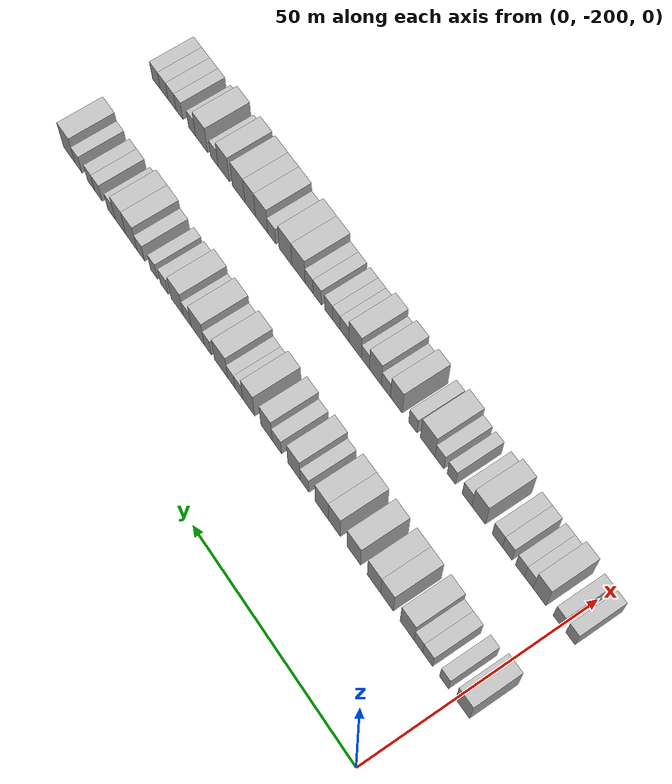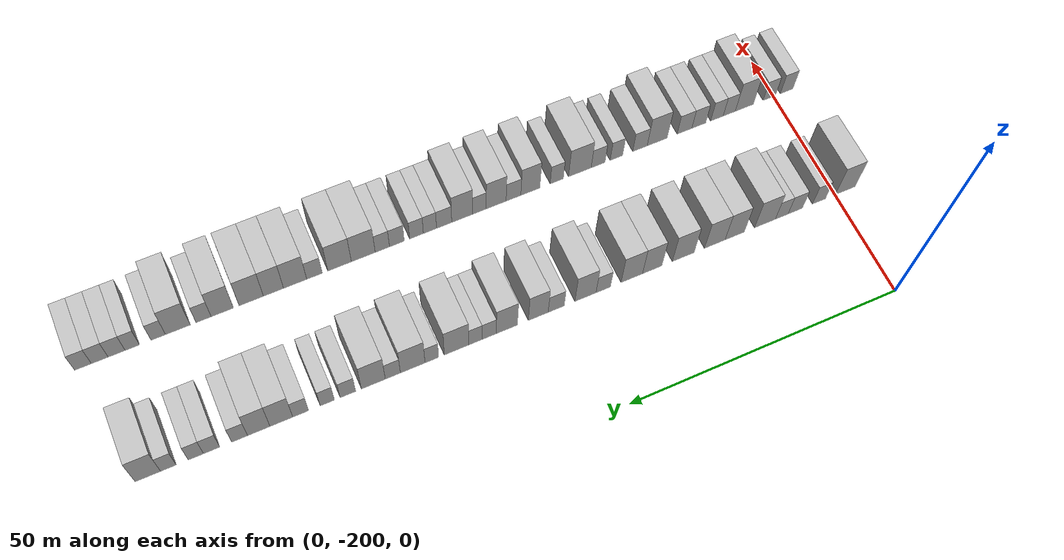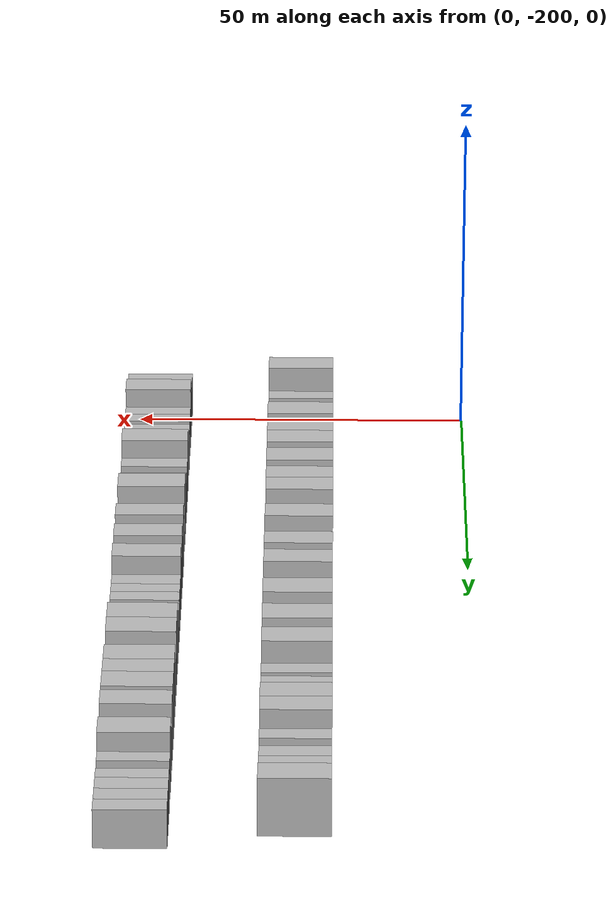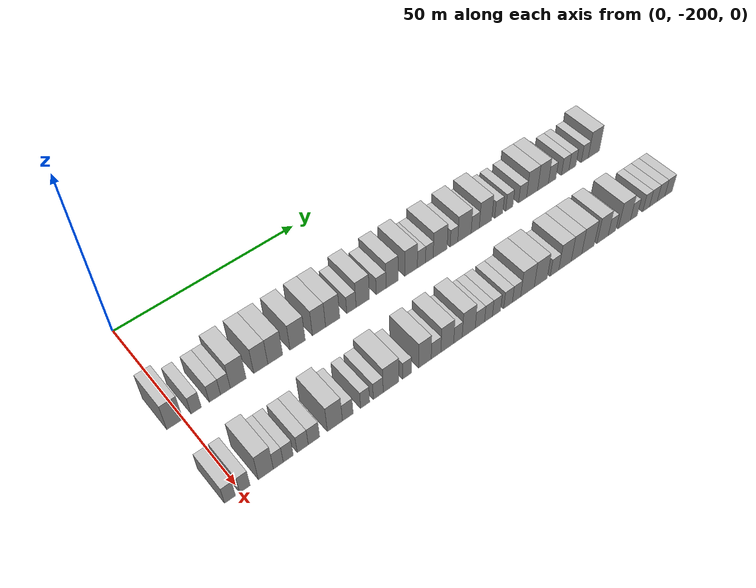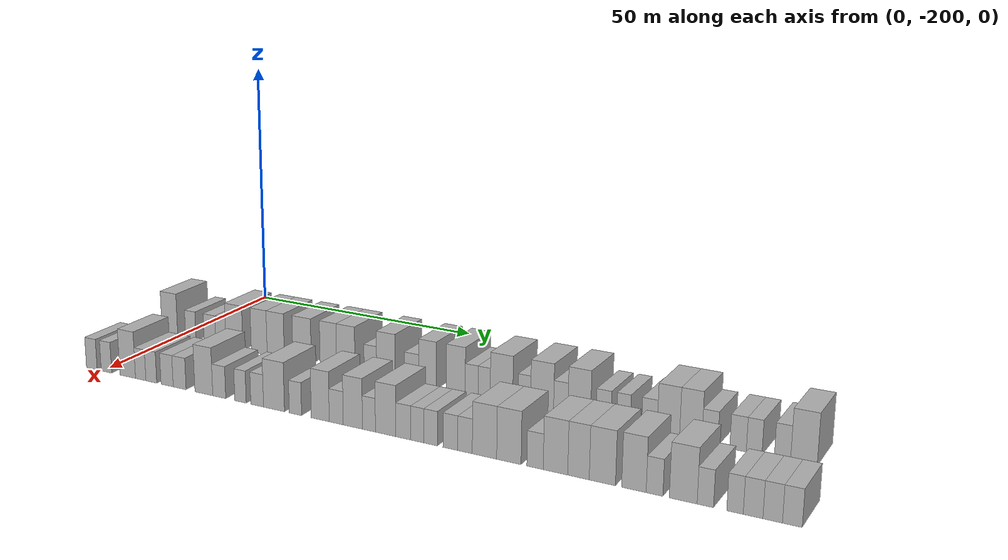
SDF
<sdf version="1.6">
 <world name="default">
  <model name="building_1">
   <static>1</static>
   <pose>25.0000 -202.0195 0 0.000000 0.000000 0.000000</pose>
   <link name="link">
    <pose>0 0 4.50 0 0 0</pose>
    <collision name="collision"><geometry><box><size>10.0000 3.9611 9.0000</size></box></geometry></collision>
    <visual name="visual">
     <cast_shadows>0</cast_shadows>
     <geometry><box><size>10.0000 3.9611 9.0000</size></box></geometry>
     <material>
      <script>
       <uri>model://HANNAS_wall/materials/scripts</uri>
       <uri>model://HANNAS_wall/materials/textures</uri>
       <name>vrc/HANNAS_wall</name>
      </script>
     </material>
    </visual>
   </link>
  </model>
  <model name="building_2">
   <static>1</static>
   <pose>25.0000 -196.7426 0 0.000000 0.000000 0.000000</pose>
   <link name="link">
    <pose>0 0 3.00 0 0 0</pose>
    <collision name="collision"><geometry><box><size>10.0000 2.5925 6.0000</size></box></geometry></collision>
    <visual name="visual">
     <cast_shadows>0</cast_shadows>
     <geometry><box><size>10.0000 2.5925 6.0000</size></box></geometry>
     <material>
      <script>
       <uri>model://HANNAS_wall/materials/scripts</uri>
       <uri>model://HANNAS_wall/materials/textures</uri>
       <name>vrc/HANNAS_wall</name>
      </script>
     </material>
    </visual>
   </link>
  </model>
  <model name="building_3">
   <static>1</static>
   <pose>25.0000 -192.0172 0 0.000000 0.000000 0.000000</pose>
   <link name="link">
    <pose>0 0 3.00 0 0 0</pose>
    <collision name="collision"><geometry><box><size>10.0000 2.8583 6.0000</size></box></geometry></collision>
    <visual name="visual">
     <cast_shadows>0</cast_shadows>
     <geometry><box><size>10.0000 2.8583 6.0000</size></box></geometry>
     <material>
      <script>
       <uri>model://HANNAS_wall/materials/scripts</uri>
       <uri>model://HANNAS_wall/materials/textures</uri>
       <name>vrc/HANNAS_wall</name>
      </script>
     </material>
    </visual>
   </link>
  </model>
  <model name="building_4">
   <static>1</static>
   <pose>25.0000 -189.3305 0 0.000000 0.000000 0.000000</pose>
   <link name="link">
    <pose>0 0 3.00 0 0 0</pose>
    <collision name="collision"><geometry><box><size>10.0000 2.5152 6.0000</size></box></geometry></collision>
    <visual name="visual">
     <cast_shadows>0</cast_shadows>
     <geometry><box><size>10.0000 2.5152 6.0000</size></box></geometry>
     <material>
      <script>
       <uri>model://HANNAS_wall/materials/scripts</uri>
       <uri>model://HANNAS_wall/materials/textures</uri>
       <name>vrc/HANNAS_wall</name>
      </script>
     </material>
    </visual>
   </link>
  </model>
  <model name="building_5">
   <static>1</static>
   <pose>25.0000 -186.0190 0 0.000000 0.000000 0.000000</pose>
   <link name="link">
    <pose>0 0 4.50 0 0 0</pose>
    <collision name="collision"><geometry><box><size>10.0000 4.1077 9.0000</size></box></geometry></collision>
    <visual name="visual">
     <cast_shadows>0</cast_shadows>
     <geometry><box><size>10.0000 4.1077 9.0000</size></box></geometry>
     <material>
      <script>
       <uri>model://HANNAS_wall/materials/scripts</uri>
       <uri>model://HANNAS_wall/materials/textures</uri>
       <name>vrc/HANNAS_wall</name>
      </script>
     </material>
    </visual>
   </link>
  </model>
  <model name="building_6">
   <static>1</static>
   <pose>25.0000 -180.0882 0 0.000000 0.000000 0.000000</pose>
   <link name="link">
    <pose>0 0 4.50 0 0 0</pose>
    <collision name="collision"><geometry><box><size>10.0000 3.7539 9.0000</size></box></geometry></collision>
    <visual name="visual">
     <cast_shadows>0</cast_shadows>
     <geometry><box><size>10.0000 3.7539 9.0000</size></box></geometry>
     <material>
      <script>
       <uri>model://HANNAS_wall/materials/scripts</uri>
       <uri>model://HANNAS_wall/materials/textures</uri>
       <name>vrc/HANNAS_wall</name>
      </script>
     </material>
    </visual>
   </link>
  </model>
  <model name="building_7">
   <static>1</static>
   <pose>25.0000 -176.2114 0 0.000000 0.000000 0.000000</pose>
   <link name="link">
    <pose>0 0 4.50 0 0 0</pose>
    <collision name="collision"><geometry><box><size>10.0000 3.9996 9.0000</size></box></geometry></collision>
    <visual name="visual">
     <cast_shadows>0</cast_shadows>
     <geometry><box><size>10.0000 3.9996 9.0000</size></box></geometry>
     <material>
      <script>
       <uri>model://HANNAS_wall/materials/scripts</uri>
       <uri>model://HANNAS_wall/materials/textures</uri>
       <name>vrc/HANNAS_wall</name>
      </script>
     </material>
    </visual>
   </link>
  </model>
  <model name="building_8">
   <static>1</static>
   <pose>25.0000 -170.1187 0 0.000000 0.000000 0.000000</pose>
   <link name="link">
    <pose>0 0 4.50 0 0 0</pose>
    <collision name="collision"><geometry><box><size>10.0000 4.1858 9.0000</size></box></geometry></collision>
    <visual name="visual">
     <cast_shadows>0</cast_shadows>
     <geometry><box><size>10.0000 4.1858 9.0000</size></box></geometry>
     <material>
      <script>
       <uri>model://HANNAS_wall/materials/scripts</uri>
       <uri>model://HANNAS_wall/materials/textures</uri>
       <name>vrc/HANNAS_wall</name>
      </script>
     </material>
    </visual>
   </link>
  </model>
  <model name="building_9">
   <static>1</static>
   <pose>25.0000 -164.1834 0 0.000000 0.000000 0.000000</pose>
   <link name="link">
    <pose>0 0 4.50 0 0 0</pose>
    <collision name="collision"><geometry><box><size>10.0000 3.6849 9.0000</size></box></geometry></collision>
    <visual name="visual">
     <cast_shadows>0</cast_shadows>
     <geometry><box><size>10.0000 3.6849 9.0000</size></box></geometry>
     <material>
      <script>
       <uri>model://HANNAS_wall/materials/scripts</uri>
       <uri>model://HANNAS_wall/materials/textures</uri>
       <name>vrc/HANNAS_wall</name>
      </script>
     </material>
    </visual>
   </link>
  </model>
  <model name="building_10">
   <static>1</static>
   <pose>25.0000 -160.3141 0 0.000000 0.000000 0.000000</pose>
   <link name="link">
    <pose>0 0 4.50 0 0 0</pose>
    <collision name="collision"><geometry><box><size>10.0000 4.0536 9.0000</size></box></geometry></collision>
    <visual name="visual">
     <cast_shadows>0</cast_shadows>
     <geometry><box><size>10.0000 4.0536 9.0000</size></box></geometry>
     <material>
      <script>
       <uri>model://HANNAS_wall/materials/scripts</uri>
       <uri>model://HANNAS_wall/materials/textures</uri>
       <name>vrc/HANNAS_wall</name>
      </script>
     </material>
    </visual>
   </link>
  </model>
  <model name="building_11">
   <static>1</static>
   <pose>25.0000 -154.9303 0 0.000000 0.000000 0.000000</pose>
   <link name="link">
    <pose>0 0 3.00 0 0 0</pose>
    <collision name="collision"><geometry><box><size>10.0000 2.7140 6.0000</size></box></geometry></collision>
    <visual name="visual">
     <cast_shadows>0</cast_shadows>
     <geometry><box><size>10.0000 2.7140 6.0000</size></box></geometry>
     <material>
      <script>
       <uri>model://HANNAS_wall/materials/scripts</uri>
       <uri>model://HANNAS_wall/materials/textures</uri>
       <name>vrc/HANNAS_wall</name>
      </script>
     </material>
    </visual>
   </link>
  </model>
  <model name="building_12">
   <static>1</static>
   <pose>25.0000 -151.6047 0 0.000000 0.000000 0.000000</pose>
   <link name="link">
    <pose>0 0 4.50 0 0 0</pose>
    <collision name="collision"><geometry><box><size>10.0000 3.9372 9.0000</size></box></geometry></collision>
    <visual name="visual">
     <cast_shadows>0</cast_shadows>
     <geometry><box><size>10.0000 3.9372 9.0000</size></box></geometry>
     <material>
      <script>
       <uri>model://HANNAS_wall/materials/scripts</uri>
       <uri>model://HANNAS_wall/materials/textures</uri>
       <name>vrc/HANNAS_wall</name>
      </script>
     </material>
    </visual>
   </link>
  </model>
  <model name="building_13">
   <static>1</static>
   <pose>25.0000 -146.1533 0 0.000000 0.000000 0.000000</pose>
   <link name="link">
    <pose>0 0 3.00 0 0 0</pose>
    <collision name="collision"><geometry><box><size>10.0000 2.9655 6.0000</size></box></geometry></collision>
    <visual name="visual">
     <cast_shadows>0</cast_shadows>
     <geometry><box><size>10.0000 2.9655 6.0000</size></box></geometry>
     <material>
      <script>
       <uri>model://HANNAS_wall/materials/scripts</uri>
       <uri>model://HANNAS_wall/materials/textures</uri>
       <name>vrc/HANNAS_wall</name>
      </script>
     </material>
    </visual>
   </link>
  </model>
  <model name="building_14">
   <static>1</static>
   <pose>25.0000 -142.8404 0 0.000000 0.000000 0.000000</pose>
   <link name="link">
    <pose>0 0 4.50 0 0 0</pose>
    <collision name="collision"><geometry><box><size>10.0000 3.6602 9.0000</size></box></geometry></collision>
    <visual name="visual">
     <cast_shadows>0</cast_shadows>
     <geometry><box><size>10.0000 3.6602 9.0000</size></box></geometry>
     <material>
      <script>
       <uri>model://HANNAS_wall/materials/scripts</uri>
       <uri>model://HANNAS_wall/materials/textures</uri>
       <name>vrc/HANNAS_wall</name>
      </script>
     </material>
    </visual>
   </link>
  </model>
  <model name="building_15">
   <static>1</static>
   <pose>25.0000 -137.0735 0 0.000000 0.000000 0.000000</pose>
   <link name="link">
    <pose>0 0 4.50 0 0 0</pose>
    <collision name="collision"><geometry><box><size>10.0000 3.8736 9.0000</size></box></geometry></collision>
    <visual name="visual">
     <cast_shadows>0</cast_shadows>
     <geometry><box><size>10.0000 3.8736 9.0000</size></box></geometry>
     <material>
      <script>
       <uri>model://HANNAS_wall/materials/scripts</uri>
       <uri>model://HANNAS_wall/materials/textures</uri>
       <name>vrc/HANNAS_wall</name>
      </script>
     </material>
    </visual>
   </link>
  </model>
  <model name="building_16">
   <static>1</static>
   <pose>25.0000 -133.8605 0 0.000000 0.000000 0.000000</pose>
   <link name="link">
    <pose>0 0 3.00 0 0 0</pose>
    <collision name="collision"><geometry><box><size>10.0000 2.5524 6.0000</size></box></geometry></collision>
    <visual name="visual">
     <cast_shadows>0</cast_shadows>
     <geometry><box><size>10.0000 2.5524 6.0000</size></box></geometry>
     <material>
      <script>
       <uri>model://HANNAS_wall/materials/scripts</uri>
       <uri>model://HANNAS_wall/materials/textures</uri>
       <name>vrc/HANNAS_wall</name>
      </script>
     </material>
    </visual>
   </link>
  </model>
  <model name="building_17">
   <static>1</static>
   <pose>25.0000 -131.3739 0 0.000000 0.000000 0.000000</pose>
   <link name="link">
    <pose>0 0 3.00 0 0 0</pose>
    <collision name="collision"><geometry><box><size>10.0000 2.4209 6.0000</size></box></geometry></collision>
    <visual name="visual">
     <cast_shadows>0</cast_shadows>
     <geometry><box><size>10.0000 2.4209 6.0000</size></box></geometry>
     <material>
      <script>
       <uri>model://HANNAS_wall/materials/scripts</uri>
       <uri>model://HANNAS_wall/materials/textures</uri>
       <name>vrc/HANNAS_wall</name>
      </script>
     </material>
    </visual>
   </link>
  </model>
  <model name="building_18">
   <static>1</static>
   <pose>25.0000 -127.9563 0 0.000000 0.000000 0.000000</pose>
   <link name="link">
    <pose>0 0 4.50 0 0 0</pose>
    <collision name="collision"><geometry><box><size>10.0000 4.4143 9.0000</size></box></geometry></collision>
    <visual name="visual">
     <cast_shadows>0</cast_shadows>
     <geometry><box><size>10.0000 4.4143 9.0000</size></box></geometry>
     <material>
      <script>
       <uri>model://HANNAS_wall/materials/scripts</uri>
       <uri>model://HANNAS_wall/materials/textures</uri>
       <name>vrc/HANNAS_wall</name>
      </script>
     </material>
    </visual>
   </link>
  </model>
  <model name="building_19">
   <static>1</static>
   <pose>25.0000 -123.5291 0 0.000000 0.000000 0.000000</pose>
   <link name="link">
    <pose>0 0 3.00 0 0 0</pose>
    <collision name="collision"><geometry><box><size>10.0000 2.4401 6.0000</size></box></geometry></collision>
    <visual name="visual">
     <cast_shadows>0</cast_shadows>
     <geometry><box><size>10.0000 2.4401 6.0000</size></box></geometry>
     <material>
      <script>
       <uri>model://HANNAS_wall/materials/scripts</uri>
       <uri>model://HANNAS_wall/materials/textures</uri>
       <name>vrc/HANNAS_wall</name>
      </script>
     </material>
    </visual>
   </link>
  </model>
  <model name="building_20">
   <static>1</static>
   <pose>25.0000 -120.1236 0 0.000000 0.000000 0.000000</pose>
   <link name="link">
    <pose>0 0 4.50 0 0 0</pose>
    <collision name="collision"><geometry><box><size>10.0000 4.3709 9.0000</size></box></geometry></collision>
    <visual name="visual">
     <cast_shadows>0</cast_shadows>
     <geometry><box><size>10.0000 4.3709 9.0000</size></box></geometry>
     <material>
      <script>
       <uri>model://HANNAS_wall/materials/scripts</uri>
       <uri>model://HANNAS_wall/materials/textures</uri>
       <name>vrc/HANNAS_wall</name>
      </script>
     </material>
    </visual>
   </link>
  </model>
  <model name="building_21">
   <static>1</static>
   <pose>25.0000 -116.5990 0 0.000000 0.000000 0.000000</pose>
   <link name="link">
    <pose>0 0 3.00 0 0 0</pose>
    <collision name="collision"><geometry><box><size>10.0000 2.6783 6.0000</size></box></geometry></collision>
    <visual name="visual">
     <cast_shadows>0</cast_shadows>
     <geometry><box><size>10.0000 2.6783 6.0000</size></box></geometry>
     <material>
      <script>
       <uri>model://HANNAS_wall/materials/scripts</uri>
       <uri>model://HANNAS_wall/materials/textures</uri>
       <name>vrc/HANNAS_wall</name>
      </script>
     </material>
    </visual>
   </link>
  </model>
  <model name="building_22">
   <static>1</static>
   <pose>25.0000 -113.1571 0 0.000000 0.000000 0.000000</pose>
   <link name="link">
    <pose>0 0 4.50 0 0 0</pose>
    <collision name="collision"><geometry><box><size>10.0000 4.2056 9.0000</size></box></geometry></collision>
    <visual name="visual">
     <cast_shadows>0</cast_shadows>
     <geometry><box><size>10.0000 4.2056 9.0000</size></box></geometry>
     <material>
      <script>
       <uri>model://HANNAS_wall/materials/scripts</uri>
       <uri>model://HANNAS_wall/materials/textures</uri>
       <name>vrc/HANNAS_wall</name>
      </script>
     </material>
    </visual>
   </link>
  </model>
  <model name="building_23">
   <static>1</static>
   <pose>25.0000 -108.7004 0 0.000000 0.000000 0.000000</pose>
   <link name="link">
    <pose>0 0 3.00 0 0 0</pose>
    <collision name="collision"><geometry><box><size>10.0000 2.7079 6.0000</size></box></geometry></collision>
    <visual name="visual">
     <cast_shadows>0</cast_shadows>
     <geometry><box><size>10.0000 2.7079 6.0000</size></box></geometry>
     <material>
      <script>
       <uri>model://HANNAS_wall/materials/scripts</uri>
       <uri>model://HANNAS_wall/materials/textures</uri>
       <name>vrc/HANNAS_wall</name>
      </script>
     </material>
    </visual>
   </link>
  </model>
  <model name="building_24">
   <static>1</static>
   <pose>25.0000 -105.1096 0 0.000000 0.000000 0.000000</pose>
   <link name="link">
    <pose>0 0 3.00 0 0 0</pose>
    <collision name="collision"><geometry><box><size>10.0000 2.4737 6.0000</size></box></geometry></collision>
    <visual name="visual">
     <cast_shadows>0</cast_shadows>
     <geometry><box><size>10.0000 2.4737 6.0000</size></box></geometry>
     <material>
      <script>
       <uri>model://HANNAS_wall/materials/scripts</uri>
       <uri>model://HANNAS_wall/materials/textures</uri>
       <name>vrc/HANNAS_wall</name>
      </script>
     </material>
    </visual>
   </link>
  </model>
  <model name="building_25">
   <static>1</static>
   <pose>25.0000 -100.5047 0 0.000000 0.000000 0.000000</pose>
   <link name="link">
    <pose>0 0 3.00 0 0 0</pose>
    <collision name="collision"><geometry><box><size>10.0000 2.7361 6.0000</size></box></geometry></collision>
    <visual name="visual">
     <cast_shadows>0</cast_shadows>
     <geometry><box><size>10.0000 2.7361 6.0000</size></box></geometry>
     <material>
      <script>
       <uri>model://HANNAS_wall/materials/scripts</uri>
       <uri>model://HANNAS_wall/materials/textures</uri>
       <name>vrc/HANNAS_wall</name>
      </script>
     </material>
    </visual>
   </link>
  </model>
  <model name="building_26">
   <static>1</static>
   <pose>25.0000 -97.1842 0 0.000000 0.000000 0.000000</pose>
   <link name="link">
    <pose>0 0 4.50 0 0 0</pose>
    <collision name="collision"><geometry><box><size>10.0000 3.9048 9.0000</size></box></geometry></collision>
    <visual name="visual">
     <cast_shadows>0</cast_shadows>
     <geometry><box><size>10.0000 3.9048 9.0000</size></box></geometry>
     <material>
      <script>
       <uri>model://HANNAS_wall/materials/scripts</uri>
       <uri>model://HANNAS_wall/materials/textures</uri>
       <name>vrc/HANNAS_wall</name>
      </script>
     </material>
    </visual>
   </link>
  </model>
  <model name="building_27">
   <static>1</static>
   <pose>25.0000 -93.3163 0 0.000000 0.000000 0.000000</pose>
   <link name="link">
    <pose>0 0 4.50 0 0 0</pose>
    <collision name="collision"><geometry><box><size>10.0000 3.8311 9.0000</size></box></geometry></collision>
    <visual name="visual">
     <cast_shadows>0</cast_shadows>
     <geometry><box><size>10.0000 3.8311 9.0000</size></box></geometry>
     <material>
      <script>
       <uri>model://HANNAS_wall/materials/scripts</uri>
       <uri>model://HANNAS_wall/materials/textures</uri>
       <name>vrc/HANNAS_wall</name>
      </script>
     </material>
    </visual>
   </link>
  </model>
  <model name="building_28">
   <static>1</static>
   <pose>25.0000 -90.0524 0 0.000000 0.000000 0.000000</pose>
   <link name="link">
    <pose>0 0 3.00 0 0 0</pose>
    <collision name="collision"><geometry><box><size>10.0000 2.6967 6.0000</size></box></geometry></collision>
    <visual name="visual">
     <cast_shadows>0</cast_shadows>
     <geometry><box><size>10.0000 2.6967 6.0000</size></box></geometry>
     <material>
      <script>
       <uri>model://HANNAS_wall/materials/scripts</uri>
       <uri>model://HANNAS_wall/materials/textures</uri>
       <name>vrc/HANNAS_wall</name>
      </script>
     </material>
    </visual>
   </link>
  </model>
  <model name="building_29">
   <static>1</static>
   <pose>25.0000 -85.3369 0 0.000000 0.000000 0.000000</pose>
   <link name="link">
    <pose>0 0 3.00 0 0 0</pose>
    <collision name="collision"><geometry><box><size>10.0000 2.7343 6.0000</size></box></geometry></collision>
    <visual name="visual">
     <cast_shadows>0</cast_shadows>
     <geometry><box><size>10.0000 2.7343 6.0000</size></box></geometry>
     <material>
      <script>
       <uri>model://HANNAS_wall/materials/scripts</uri>
       <uri>model://HANNAS_wall/materials/textures</uri>
       <name>vrc/HANNAS_wall</name>
      </script>
     </material>
    </visual>
   </link>
  </model>
  <model name="building_30">
   <static>1</static>
   <pose>25.0000 -82.6835 0 0.000000 0.000000 0.000000</pose>
   <link name="link">
    <pose>0 0 3.00 0 0 0</pose>
    <collision name="collision"><geometry><box><size>10.0000 2.5724 6.0000</size></box></geometry></collision>
    <visual name="visual">
     <cast_shadows>0</cast_shadows>
     <geometry><box><size>10.0000 2.5724 6.0000</size></box></geometry>
     <material>
      <script>
       <uri>model://HANNAS_wall/materials/scripts</uri>
       <uri>model://HANNAS_wall/materials/textures</uri>
       <name>vrc/HANNAS_wall</name>
      </script>
     </material>
    </visual>
   </link>
  </model>
  <model name="building_31">
   <static>1</static>
   <pose>25.0000 -78.0929 0 0.000000 0.000000 0.000000</pose>
   <link name="link">
    <pose>0 0 3.00 0 0 0</pose>
    <collision name="collision"><geometry><box><size>10.0000 2.6089 6.0000</size></box></geometry></collision>
    <visual name="visual">
     <cast_shadows>0</cast_shadows>
     <geometry><box><size>10.0000 2.6089 6.0000</size></box></geometry>
     <material>
      <script>
       <uri>model://HANNAS_wall/materials/scripts</uri>
       <uri>model://HANNAS_wall/materials/textures</uri>
       <name>vrc/HANNAS_wall</name>
      </script>
     </material>
    </visual>
   </link>
  </model>
  <model name="building_32">
   <static>1</static>
   <pose>25.0000 -74.6809 0 0.000000 0.000000 0.000000</pose>
   <link name="link">
    <pose>0 0 4.50 0 0 0</pose>
    <collision name="collision"><geometry><box><size>10.0000 4.2151 9.0000</size></box></geometry></collision>
    <visual name="visual">
     <cast_shadows>0</cast_shadows>
     <geometry><box><size>10.0000 4.2151 9.0000</size></box></geometry>
     <material>
      <script>
       <uri>model://HANNAS_wall/materials/scripts</uri>
       <uri>model://HANNAS_wall/materials/textures</uri>
       <name>vrc/HANNAS_wall</name>
      </script>
     </material>
    </visual>
   </link>
  </model>
  <model name="building_105">
   <static>1</static>
   <pose>47.0000 -202.6898 0 0.000000 0.000000 0.000000</pose>
   <link name="link">
    <pose>0 0 3.00 0 0 0</pose>
    <collision name="collision"><geometry><box><size>10.0000 2.6205 6.0000</size></box></geometry></collision>
    <visual name="visual">
     <cast_shadows>0</cast_shadows>
     <geometry><box><size>10.0000 2.6205 6.0000</size></box></geometry>
     <material>
      <script>
       <uri>model://HANNAS_wall/materials/scripts</uri>
       <uri>model://HANNAS_wall/materials/textures</uri>
       <name>vrc/HANNAS_wall</name>
      </script>
     </material>
    </visual>
   </link>
  </model>
  <model name="building_106">
   <static>1</static>
   <pose>47.0000 -199.1092 0 0.000000 0.000000 0.000000</pose>
   <link name="link">
    <pose>0 0 3.00 0 0 0</pose>
    <collision name="collision"><geometry><box><size>10.0000 2.5406 6.0000</size></box></geometry></collision>
    <visual name="visual">
     <cast_shadows>0</cast_shadows>
     <geometry><box><size>10.0000 2.5406 6.0000</size></box></geometry>
     <material>
      <script>
       <uri>model://HANNAS_wall/materials/scripts</uri>
       <uri>model://HANNAS_wall/materials/textures</uri>
       <name>vrc/HANNAS_wall</name>
      </script>
     </material>
    </visual>
   </link>
  </model>
  <model name="building_107">
   <static>1</static>
   <pose>47.0000 -193.9786 0 0.000000 0.000000 0.000000</pose>
   <link name="link">
    <pose>0 0 4.50 0 0 0</pose>
    <collision name="collision"><geometry><box><size>10.0000 3.7207 9.0000</size></box></geometry></collision>
    <visual name="visual">
     <cast_shadows>0</cast_shadows>
     <geometry><box><size>10.0000 3.7207 9.0000</size></box></geometry>
     <material>
      <script>
       <uri>model://HANNAS_wall/materials/scripts</uri>
       <uri>model://HANNAS_wall/materials/textures</uri>
       <name>vrc/HANNAS_wall</name>
      </script>
     </material>
    </visual>
   </link>
  </model>
  <model name="building_108">
   <static>1</static>
   <pose>47.0000 -190.8915 0 0.000000 0.000000 0.000000</pose>
   <link name="link">
    <pose>0 0 3.00 0 0 0</pose>
    <collision name="collision"><geometry><box><size>10.0000 2.4534 6.0000</size></box></geometry></collision>
    <visual name="visual">
     <cast_shadows>0</cast_shadows>
     <geometry><box><size>10.0000 2.4534 6.0000</size></box></geometry>
     <material>
      <script>
       <uri>model://HANNAS_wall/materials/scripts</uri>
       <uri>model://HANNAS_wall/materials/textures</uri>
       <name>vrc/HANNAS_wall</name>
      </script>
     </material>
    </visual>
   </link>
  </model>
  <model name="building_109">
   <static>1</static>
   <pose>47.0000 -188.3953 0 0.000000 0.000000 0.000000</pose>
   <link name="link">
    <pose>0 0 3.00 0 0 0</pose>
    <collision name="collision"><geometry><box><size>10.0000 2.5390 6.0000</size></box></geometry></collision>
    <visual name="visual">
     <cast_shadows>0</cast_shadows>
     <geometry><box><size>10.0000 2.5390 6.0000</size></box></geometry>
     <material>
      <script>
       <uri>model://HANNAS_wall/materials/scripts</uri>
       <uri>model://HANNAS_wall/materials/textures</uri>
       <name>vrc/HANNAS_wall</name>
      </script>
     </material>
    </visual>
   </link>
  </model>
  <model name="building_110">
   <static>1</static>
   <pose>47.0000 -184.7229 0 0.000000 0.000000 0.000000</pose>
   <link name="link">
    <pose>0 0 3.00 0 0 0</pose>
    <collision name="collision"><geometry><box><size>10.0000 2.8058 6.0000</size></box></geometry></collision>
    <visual name="visual">
     <cast_shadows>0</cast_shadows>
     <geometry><box><size>10.0000 2.8058 6.0000</size></box></geometry>
     <material>
      <script>
       <uri>model://HANNAS_wall/materials/scripts</uri>
       <uri>model://HANNAS_wall/materials/textures</uri>
       <name>vrc/HANNAS_wall</name>
      </script>
     </material>
    </visual>
   </link>
  </model>
  <model name="building_111">
   <static>1</static>
   <pose>47.0000 -181.8430 0 0.000000 0.000000 0.000000</pose>
   <link name="link">
    <pose>0 0 3.00 0 0 0</pose>
    <collision name="collision"><geometry><box><size>10.0000 2.9540 6.0000</size></box></geometry></collision>
    <visual name="visual">
     <cast_shadows>0</cast_shadows>
     <geometry><box><size>10.0000 2.9540 6.0000</size></box></geometry>
     <material>
      <script>
       <uri>model://HANNAS_wall/materials/scripts</uri>
       <uri>model://HANNAS_wall/materials/textures</uri>
       <name>vrc/HANNAS_wall</name>
      </script>
     </material>
    </visual>
   </link>
  </model>
  <model name="building_112">
   <static>1</static>
   <pose>47.0000 -176.3728 0 0.000000 0.000000 0.000000</pose>
   <link name="link">
    <pose>0 0 4.50 0 0 0</pose>
    <collision name="collision"><geometry><box><size>10.0000 3.9865 9.0000</size></box></geometry></collision>
    <visual name="visual">
     <cast_shadows>0</cast_shadows>
     <geometry><box><size>10.0000 3.9865 9.0000</size></box></geometry>
     <material>
      <script>
       <uri>model://HANNAS_wall/materials/scripts</uri>
       <uri>model://HANNAS_wall/materials/textures</uri>
       <name>vrc/HANNAS_wall</name>
      </script>
     </material>
    </visual>
   </link>
  </model>
  <model name="building_113">
   <static>1</static>
   <pose>47.0000 -172.9415 0 0.000000 0.000000 0.000000</pose>
   <link name="link">
    <pose>0 0 3.00 0 0 0</pose>
    <collision name="collision"><geometry><box><size>10.0000 2.8760 6.0000</size></box></geometry></collision>
    <visual name="visual">
     <cast_shadows>0</cast_shadows>
     <geometry><box><size>10.0000 2.8760 6.0000</size></box></geometry>
     <material>
      <script>
       <uri>model://HANNAS_wall/materials/scripts</uri>
       <uri>model://HANNAS_wall/materials/textures</uri>
       <name>vrc/HANNAS_wall</name>
      </script>
     </material>
    </visual>
   </link>
  </model>
  <model name="building_114">
   <static>1</static>
   <pose>47.0000 -168.2728 0 0.000000 0.000000 0.000000</pose>
   <link name="link">
    <pose>0 0 3.00 0 0 0</pose>
    <collision name="collision"><geometry><box><size>10.0000 2.4615 6.0000</size></box></geometry></collision>
    <visual name="visual">
     <cast_shadows>0</cast_shadows>
     <geometry><box><size>10.0000 2.4615 6.0000</size></box></geometry>
     <material>
      <script>
       <uri>model://HANNAS_wall/materials/scripts</uri>
       <uri>model://HANNAS_wall/materials/textures</uri>
       <name>vrc/HANNAS_wall</name>
      </script>
     </material>
    </visual>
   </link>
  </model>
  <model name="building_115">
   <static>1</static>
   <pose>47.0000 -164.6778 0 0.000000 0.000000 0.000000</pose>
   <link name="link">
    <pose>0 0 3.00 0 0 0</pose>
    <collision name="collision"><geometry><box><size>10.0000 2.7286 6.0000</size></box></geometry></collision>
    <visual name="visual">
     <cast_shadows>0</cast_shadows>
     <geometry><box><size>10.0000 2.7286 6.0000</size></box></geometry>
     <material>
      <script>
       <uri>model://HANNAS_wall/materials/scripts</uri>
       <uri>model://HANNAS_wall/materials/textures</uri>
       <name>vrc/HANNAS_wall</name>
      </script>
     </material>
    </visual>
   </link>
  </model>
  <model name="building_116">
   <static>1</static>
   <pose>47.0000 -161.1011 0 0.000000 0.000000 0.000000</pose>
   <link name="link">
    <pose>0 0 4.50 0 0 0</pose>
    <collision name="collision"><geometry><box><size>10.0000 4.4248 9.0000</size></box></geometry></collision>
    <visual name="visual">
     <cast_shadows>0</cast_shadows>
     <geometry><box><size>10.0000 4.4248 9.0000</size></box></geometry>
     <material>
      <script>
       <uri>model://HANNAS_wall/materials/scripts</uri>
       <uri>model://HANNAS_wall/materials/textures</uri>
       <name>vrc/HANNAS_wall</name>
      </script>
     </material>
    </visual>
   </link>
  </model>
  <model name="building_117">
   <static>1</static>
   <pose>47.0000 -156.6109 0 0.000000 0.000000 0.000000</pose>
   <link name="link">
    <pose>0 0 3.00 0 0 0</pose>
    <collision name="collision"><geometry><box><size>10.0000 2.5557 6.0000</size></box></geometry></collision>
    <visual name="visual">
     <cast_shadows>0</cast_shadows>
     <geometry><box><size>10.0000 2.5557 6.0000</size></box></geometry>
     <material>
      <script>
       <uri>model://HANNAS_wall/materials/scripts</uri>
       <uri>model://HANNAS_wall/materials/textures</uri>
       <name>vrc/HANNAS_wall</name>
      </script>
     </material>
    </visual>
   </link>
  </model>
  <model name="building_118">
   <static>1</static>
   <pose>47.0000 -151.5051 0 0.000000 0.000000 0.000000</pose>
   <link name="link">
    <pose>0 0 4.50 0 0 0</pose>
    <collision name="collision"><geometry><box><size>10.0000 3.6558 9.0000</size></box></geometry></collision>
    <visual name="visual">
     <cast_shadows>0</cast_shadows>
     <geometry><box><size>10.0000 3.6558 9.0000</size></box></geometry>
     <material>
      <script>
       <uri>model://HANNAS_wall/materials/scripts</uri>
       <uri>model://HANNAS_wall/materials/textures</uri>
       <name>vrc/HANNAS_wall</name>
      </script>
     </material>
    </visual>
   </link>
  </model>
  <model name="building_119">
   <static>1</static>
   <pose>47.0000 -148.2666 0 0.000000 0.000000 0.000000</pose>
   <link name="link">
    <pose>0 0 3.00 0 0 0</pose>
    <collision name="collision"><geometry><box><size>10.0000 2.8212 6.0000</size></box></geometry></collision>
    <visual name="visual">
     <cast_shadows>0</cast_shadows>
     <geometry><box><size>10.0000 2.8212 6.0000</size></box></geometry>
     <material>
      <script>
       <uri>model://HANNAS_wall/materials/scripts</uri>
       <uri>model://HANNAS_wall/materials/textures</uri>
       <name>vrc/HANNAS_wall</name>
      </script>
     </material>
    </visual>
   </link>
  </model>
  <model name="building_120">
   <static>1</static>
   <pose>47.0000 -144.9527 0 0.000000 0.000000 0.000000</pose>
   <link name="link">
    <pose>0 0 4.50 0 0 0</pose>
    <collision name="collision"><geometry><box><size>10.0000 3.8066 9.0000</size></box></geometry></collision>
    <visual name="visual">
     <cast_shadows>0</cast_shadows>
     <geometry><box><size>10.0000 3.8066 9.0000</size></box></geometry>
     <material>
      <script>
       <uri>model://HANNAS_wall/materials/scripts</uri>
       <uri>model://HANNAS_wall/materials/textures</uri>
       <name>vrc/HANNAS_wall</name>
      </script>
     </material>
    </visual>
   </link>
  </model>
  <model name="building_121">
   <static>1</static>
   <pose>47.0000 -141.7789 0 0.000000 0.000000 0.000000</pose>
   <link name="link">
    <pose>0 0 3.00 0 0 0</pose>
    <collision name="collision"><geometry><box><size>10.0000 2.5410 6.0000</size></box></geometry></collision>
    <visual name="visual">
     <cast_shadows>0</cast_shadows>
     <geometry><box><size>10.0000 2.5410 6.0000</size></box></geometry>
     <material>
      <script>
       <uri>model://HANNAS_wall/materials/scripts</uri>
       <uri>model://HANNAS_wall/materials/textures</uri>
       <name>vrc/HANNAS_wall</name>
      </script>
     </material>
    </visual>
   </link>
  </model>
  <model name="building_122">
   <static>1</static>
   <pose>47.0000 -138.5281 0 0.000000 0.000000 0.000000</pose>
   <link name="link">
    <pose>0 0 4.50 0 0 0</pose>
    <collision name="collision"><geometry><box><size>10.0000 3.9607 9.0000</size></box></geometry></collision>
    <visual name="visual">
     <cast_shadows>0</cast_shadows>
     <geometry><box><size>10.0000 3.9607 9.0000</size></box></geometry>
     <material>
      <script>
       <uri>model://HANNAS_wall/materials/scripts</uri>
       <uri>model://HANNAS_wall/materials/textures</uri>
       <name>vrc/HANNAS_wall</name>
      </script>
     </material>
    </visual>
   </link>
  </model>
  <model name="building_123">
   <static>1</static>
   <pose>47.0000 -135.1188 0 0.000000 0.000000 0.000000</pose>
   <link name="link">
    <pose>0 0 3.00 0 0 0</pose>
    <collision name="collision"><geometry><box><size>10.0000 2.8579 6.0000</size></box></geometry></collision>
    <visual name="visual">
     <cast_shadows>0</cast_shadows>
     <geometry><box><size>10.0000 2.8579 6.0000</size></box></geometry>
     <material>
      <script>
       <uri>model://HANNAS_wall/materials/scripts</uri>
       <uri>model://HANNAS_wall/materials/textures</uri>
       <name>vrc/HANNAS_wall</name>
      </script>
     </material>
    </visual>
   </link>
  </model>
  <model name="building_124">
   <static>1</static>
   <pose>47.0000 -132.4629 0 0.000000 0.000000 0.000000</pose>
   <link name="link">
    <pose>0 0 3.00 0 0 0</pose>
    <collision name="collision"><geometry><box><size>10.0000 2.4540 6.0000</size></box></geometry></collision>
    <visual name="visual">
     <cast_shadows>0</cast_shadows>
     <geometry><box><size>10.0000 2.4540 6.0000</size></box></geometry>
     <material>
      <script>
       <uri>model://HANNAS_wall/materials/scripts</uri>
       <uri>model://HANNAS_wall/materials/textures</uri>
       <name>vrc/HANNAS_wall</name>
      </script>
     </material>
    </visual>
   </link>
  </model>
  <model name="building_125">
   <static>1</static>
   <pose>47.0000 -129.9616 0 0.000000 0.000000 0.000000</pose>
   <link name="link">
    <pose>0 0 3.00 0 0 0</pose>
    <collision name="collision"><geometry><box><size>10.0000 2.5486 6.0000</size></box></geometry></collision>
    <visual name="visual">
     <cast_shadows>0</cast_shadows>
     <geometry><box><size>10.0000 2.5486 6.0000</size></box></geometry>
     <material>
      <script>
       <uri>model://HANNAS_wall/materials/scripts</uri>
       <uri>model://HANNAS_wall/materials/textures</uri>
       <name>vrc/HANNAS_wall</name>
      </script>
     </material>
    </visual>
   </link>
  </model>
  <model name="building_126">
   <static>1</static>
   <pose>47.0000 -126.3181 0 0.000000 0.000000 0.000000</pose>
   <link name="link">
    <pose>0 0 3.00 0 0 0</pose>
    <collision name="collision"><geometry><box><size>10.0000 2.7384 6.0000</size></box></geometry></collision>
    <visual name="visual">
     <cast_shadows>0</cast_shadows>
     <geometry><box><size>10.0000 2.7384 6.0000</size></box></geometry>
     <material>
      <script>
       <uri>model://HANNAS_wall/materials/scripts</uri>
       <uri>model://HANNAS_wall/materials/textures</uri>
       <name>vrc/HANNAS_wall</name>
      </script>
     </material>
    </visual>
   </link>
  </model>
  <model name="building_127">
   <static>1</static>
   <pose>47.0000 -123.6319 0 0.000000 0.000000 0.000000</pose>
   <link name="link">
    <pose>0 0 3.00 0 0 0</pose>
    <collision name="collision"><geometry><box><size>10.0000 2.6339 6.0000</size></box></geometry></collision>
    <visual name="visual">
     <cast_shadows>0</cast_shadows>
     <geometry><box><size>10.0000 2.6339 6.0000</size></box></geometry>
     <material>
      <script>
       <uri>model://HANNAS_wall/materials/scripts</uri>
       <uri>model://HANNAS_wall/materials/textures</uri>
       <name>vrc/HANNAS_wall</name>
      </script>
     </material>
    </visual>
   </link>
  </model>
  <model name="building_128">
   <static>1</static>
   <pose>47.0000 -120.1236 0 0.000000 0.000000 0.000000</pose>
   <link name="link">
    <pose>0 0 4.50 0 0 0</pose>
    <collision name="collision"><geometry><box><size>10.0000 4.3827 9.0000</size></box></geometry></collision>
    <visual name="visual">
     <cast_shadows>0</cast_shadows>
     <geometry><box><size>10.0000 4.3827 9.0000</size></box></geometry>
     <material>
      <script>
       <uri>model://HANNAS_wall/materials/scripts</uri>
       <uri>model://HANNAS_wall/materials/textures</uri>
       <name>vrc/HANNAS_wall</name>
      </script>
     </material>
    </visual>
   </link>
  </model>
  <model name="building_129">
   <static>1</static>
   <pose>47.0000 -115.7824 0 0.000000 0.000000 0.000000</pose>
   <link name="link">
    <pose>0 0 4.50 0 0 0</pose>
    <collision name="collision"><geometry><box><size>10.0000 4.2997 9.0000</size></box></geometry></collision>
    <visual name="visual">
     <cast_shadows>0</cast_shadows>
     <geometry><box><size>10.0000 4.2997 9.0000</size></box></geometry>
     <material>
      <script>
       <uri>model://HANNAS_wall/materials/scripts</uri>
       <uri>model://HANNAS_wall/materials/textures</uri>
       <name>vrc/HANNAS_wall</name>
      </script>
     </material>
    </visual>
   </link>
  </model>
  <model name="building_130">
   <static>1</static>
   <pose>47.0000 -111.2166 0 0.000000 0.000000 0.000000</pose>
   <link name="link">
    <pose>0 0 3.00 0 0 0</pose>
    <collision name="collision"><geometry><box><size>10.0000 2.8319 6.0000</size></box></geometry></collision>
    <visual name="visual">
     <cast_shadows>0</cast_shadows>
     <geometry><box><size>10.0000 2.8319 6.0000</size></box></geometry>
     <material>
      <script>
       <uri>model://HANNAS_wall/materials/scripts</uri>
       <uri>model://HANNAS_wall/materials/textures</uri>
       <name>vrc/HANNAS_wall</name>
      </script>
     </material>
    </visual>
   </link>
  </model>
  <model name="building_131">
   <static>1</static>
   <pose>47.0000 -107.7161 0 0.000000 0.000000 0.000000</pose>
   <link name="link">
    <pose>0 0 4.50 0 0 0</pose>
    <collision name="collision"><geometry><box><size>10.0000 4.1691 9.0000</size></box></geometry></collision>
    <visual name="visual">
     <cast_shadows>0</cast_shadows>
     <geometry><box><size>10.0000 4.1691 9.0000</size></box></geometry>
     <material>
      <script>
       <uri>model://HANNAS_wall/materials/scripts</uri>
       <uri>model://HANNAS_wall/materials/textures</uri>
       <name>vrc/HANNAS_wall</name>
      </script>
     </material>
    </visual>
   </link>
  </model>
  <model name="building_132">
   <static>1</static>
   <pose>47.0000 -103.8299 0 0.000000 0.000000 0.000000</pose>
   <link name="link">
    <pose>0 0 4.50 0 0 0</pose>
    <collision name="collision"><geometry><box><size>10.0000 3.6032 9.0000</size></box></geometry></collision>
    <visual name="visual">
     <cast_shadows>0</cast_shadows>
     <geometry><box><size>10.0000 3.6032 9.0000</size></box></geometry>
     <material>
      <script>
       <uri>model://HANNAS_wall/materials/scripts</uri>
       <uri>model://HANNAS_wall/materials/textures</uri>
       <name>vrc/HANNAS_wall</name>
      </script>
     </material>
    </visual>
   </link>
  </model>
  <model name="building_133">
   <static>1</static>
   <pose>47.0000 -99.8673 0 0.000000 0.000000 0.000000</pose>
   <link name="link">
    <pose>0 0 4.50 0 0 0</pose>
    <collision name="collision"><geometry><box><size>10.0000 4.3221 9.0000</size></box></geometry></collision>
    <visual name="visual">
     <cast_shadows>0</cast_shadows>
     <geometry><box><size>10.0000 4.3221 9.0000</size></box></geometry>
     <material>
      <script>
       <uri>model://HANNAS_wall/materials/scripts</uri>
       <uri>model://HANNAS_wall/materials/textures</uri>
       <name>vrc/HANNAS_wall</name>
      </script>
     </material>
    </visual>
   </link>
  </model>
  <model name="building_134">
   <static>1</static>
   <pose>47.0000 -94.7333 0 0.000000 0.000000 0.000000</pose>
   <link name="link">
    <pose>0 0 4.50 0 0 0</pose>
    <collision name="collision"><geometry><box><size>10.0000 3.9458 9.0000</size></box></geometry></collision>
    <visual name="visual">
     <cast_shadows>0</cast_shadows>
     <geometry><box><size>10.0000 3.9458 9.0000</size></box></geometry>
     <material>
      <script>
       <uri>model://HANNAS_wall/materials/scripts</uri>
       <uri>model://HANNAS_wall/materials/textures</uri>
       <name>vrc/HANNAS_wall</name>
      </script>
     </material>
    </visual>
   </link>
  </model>
  <model name="building_135">
   <static>1</static>
   <pose>47.0000 -91.4319 0 0.000000 0.000000 0.000000</pose>
   <link name="link">
    <pose>0 0 3.00 0 0 0</pose>
    <collision name="collision"><geometry><box><size>10.0000 2.6570 6.0000</size></box></geometry></collision>
    <visual name="visual">
     <cast_shadows>0</cast_shadows>
     <geometry><box><size>10.0000 2.6570 6.0000</size></box></geometry>
     <material>
      <script>
       <uri>model://HANNAS_wall/materials/scripts</uri>
       <uri>model://HANNAS_wall/materials/textures</uri>
       <name>vrc/HANNAS_wall</name>
      </script>
     </material>
    </visual>
   </link>
  </model>
  <model name="building_136">
   <static>1</static>
   <pose>47.0000 -86.9361 0 0.000000 0.000000 0.000000</pose>
   <link name="link">
    <pose>0 0 4.50 0 0 0</pose>
    <collision name="collision"><geometry><box><size>10.0000 4.3346 9.0000</size></box></geometry></collision>
    <visual name="visual">
     <cast_shadows>0</cast_shadows>
     <geometry><box><size>10.0000 4.3346 9.0000</size></box></geometry>
     <material>
      <script>
       <uri>model://HANNAS_wall/materials/scripts</uri>
       <uri>model://HANNAS_wall/materials/textures</uri>
       <name>vrc/HANNAS_wall</name>
      </script>
     </material>
    </visual>
   </link>
  </model>
  <model name="building_137">
   <static>1</static>
   <pose>47.0000 -83.5118 0 0.000000 0.000000 0.000000</pose>
   <link name="link">
    <pose>0 0 3.00 0 0 0</pose>
    <collision name="collision"><geometry><box><size>10.0000 2.5138 6.0000</size></box></geometry></collision>
    <visual name="visual">
     <cast_shadows>0</cast_shadows>
     <geometry><box><size>10.0000 2.5138 6.0000</size></box></geometry>
     <material>
      <script>
       <uri>model://HANNAS_wall/materials/scripts</uri>
       <uri>model://HANNAS_wall/materials/textures</uri>
       <name>vrc/HANNAS_wall</name>
      </script>
     </material>
    </visual>
   </link>
  </model>
  <model name="building_138">
   <static>1</static>
   <pose>47.0000 -79.0166 0 0.000000 0.000000 0.000000</pose>
   <link name="link">
    <pose>0 0 3.00 0 0 0</pose>
    <collision name="collision"><geometry><box><size>10.0000 2.4766 6.0000</size></box></geometry></collision>
    <visual name="visual">
     <cast_shadows>0</cast_shadows>
     <geometry><box><size>10.0000 2.4766 6.0000</size></box></geometry>
     <material>
      <script>
       <uri>model://HANNAS_wall/materials/scripts</uri>
       <uri>model://HANNAS_wall/materials/textures</uri>
       <name>vrc/HANNAS_wall</name>
      </script>
     </material>
    </visual>
   </link>
  </model>
  <model name="building_139">
   <static>1</static>
   <pose>47.0000 -76.3201 0 0.000000 0.000000 0.000000</pose>
   <link name="link">
    <pose>0 0 3.00 0 0 0</pose>
    <collision name="collision"><geometry><box><size>10.0000 2.9166 6.0000</size></box></geometry></collision>
    <visual name="visual">
     <cast_shadows>0</cast_shadows>
     <geometry><box><size>10.0000 2.9166 6.0000</size></box></geometry>
     <material>
      <script>
       <uri>model://HANNAS_wall/materials/scripts</uri>
       <uri>model://HANNAS_wall/materials/textures</uri>
       <name>vrc/HANNAS_wall</name>
      </script>
     </material>
    </visual>
   </link>
  </model>
  <model name="building_140">
   <static>1</static>
   <pose>47.0000 -73.4344 0 0.000000 0.000000 0.000000</pose>
   <link name="link">
    <pose>0 0 3.00 0 0 0</pose>
    <collision name="collision"><geometry><box><size>10.0000 2.8548 6.0000</size></box></geometry></collision>
    <visual name="visual">
     <cast_shadows>0</cast_shadows>
     <geometry><box><size>10.0000 2.8548 6.0000</size></box></geometry>
     <material>
      <script>
       <uri>model://HANNAS_wall/materials/scripts</uri>
       <uri>model://HANNAS_wall/materials/textures</uri>
       <name>vrc/HANNAS_wall</name>
      </script>
     </material>
    </visual>
   </link>
  </model>
  <model name="building_141">
   <static>1</static>
   <pose>47.0000 -70.5750 0 0.000000 0.000000 0.000000</pose>
   <link name="link">
    <pose>0 0 3.00 0 0 0</pose>
    <collision name="collision"><geometry><box><size>10.0000 2.8640 6.0000</size></box></geometry></collision>
    <visual name="visual">
     <cast_shadows>0</cast_shadows>
     <geometry><box><size>10.0000 2.8640 6.0000</size></box></geometry>
     <material>
      <script>
       <uri>model://HANNAS_wall/materials/scripts</uri>
       <uri>model://HANNAS_wall/materials/textures</uri>
       <name>vrc/HANNAS_wall</name>
      </script>
     </material>
    </visual>
   </link>
  </model>
 </world>
</sdf>
